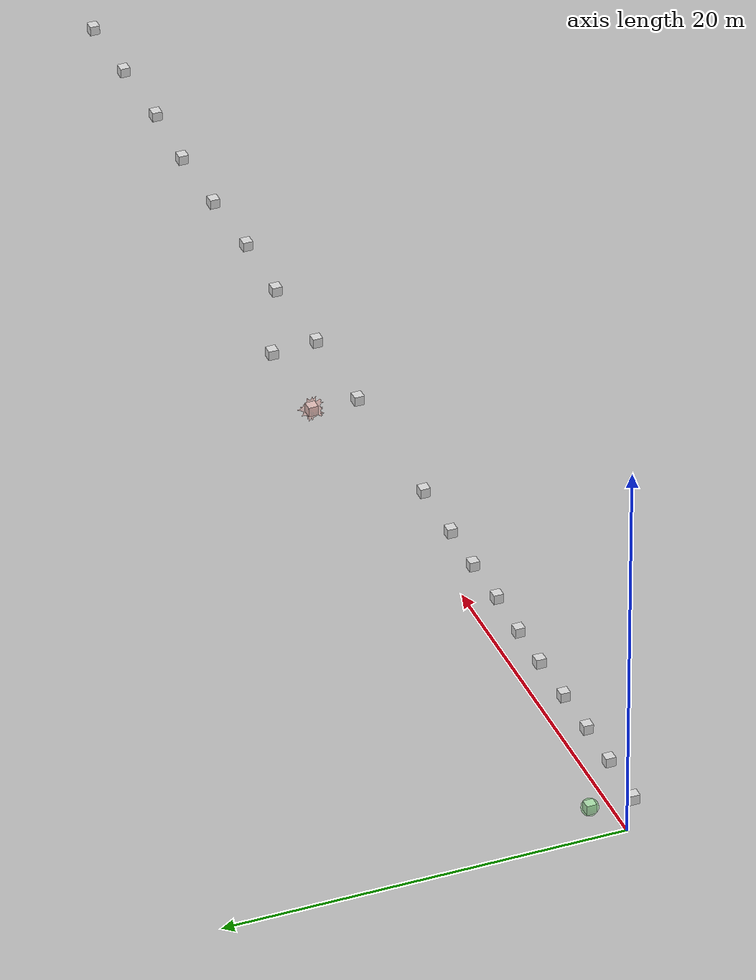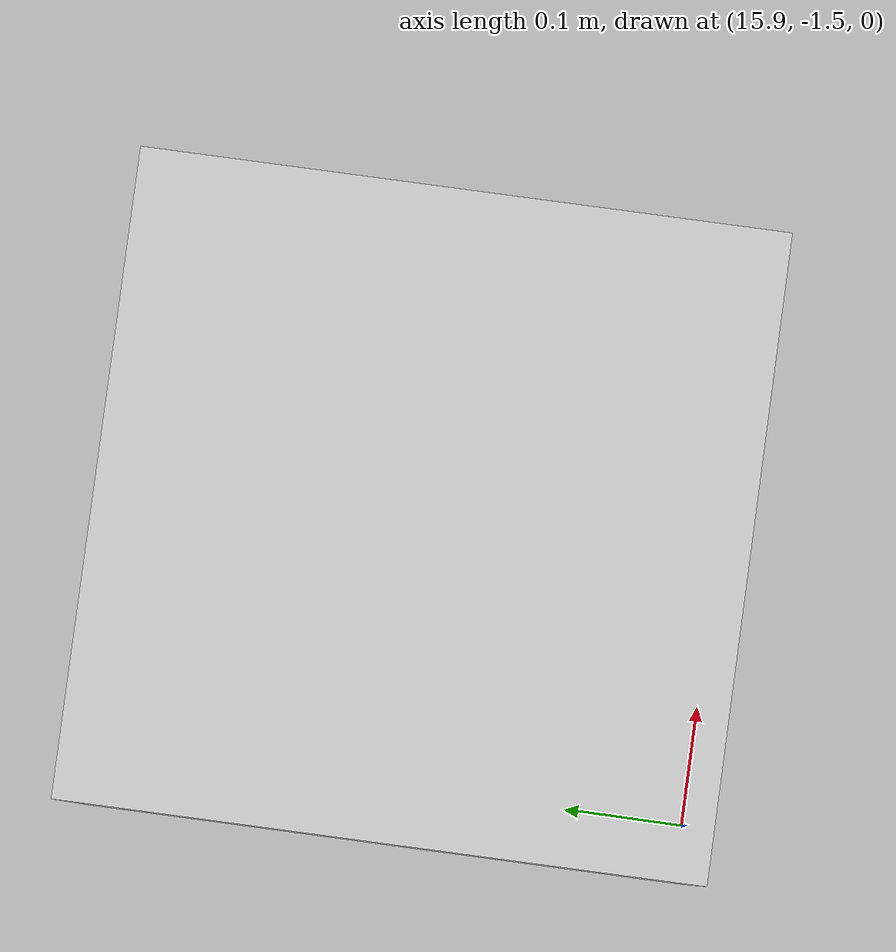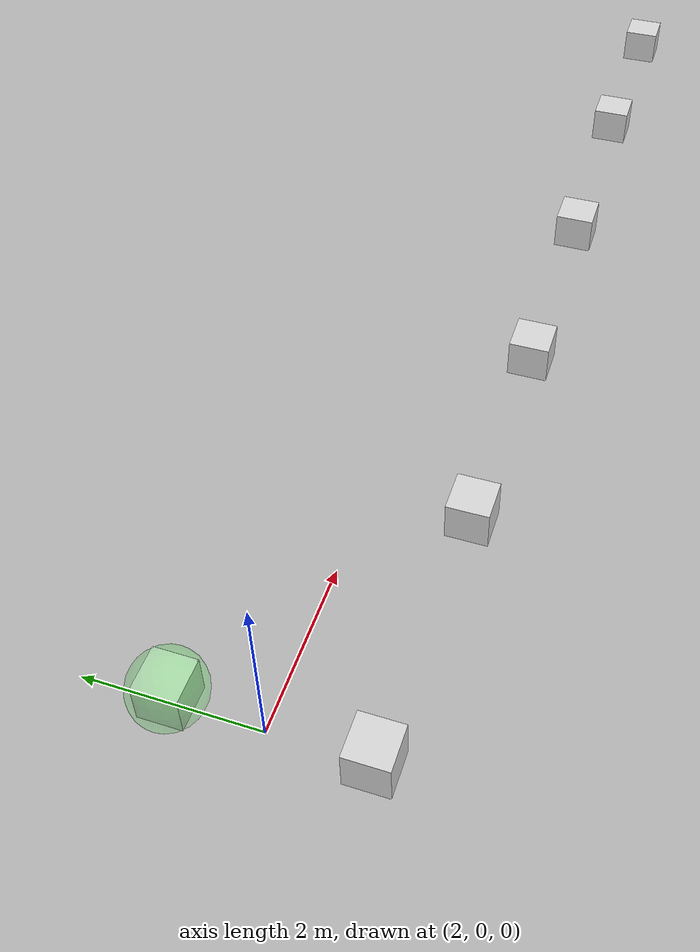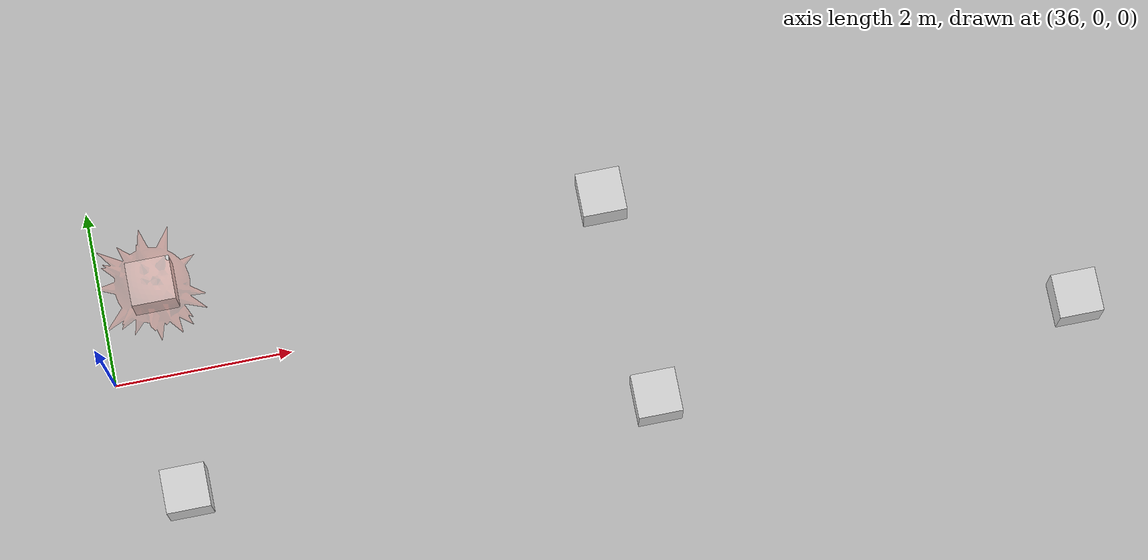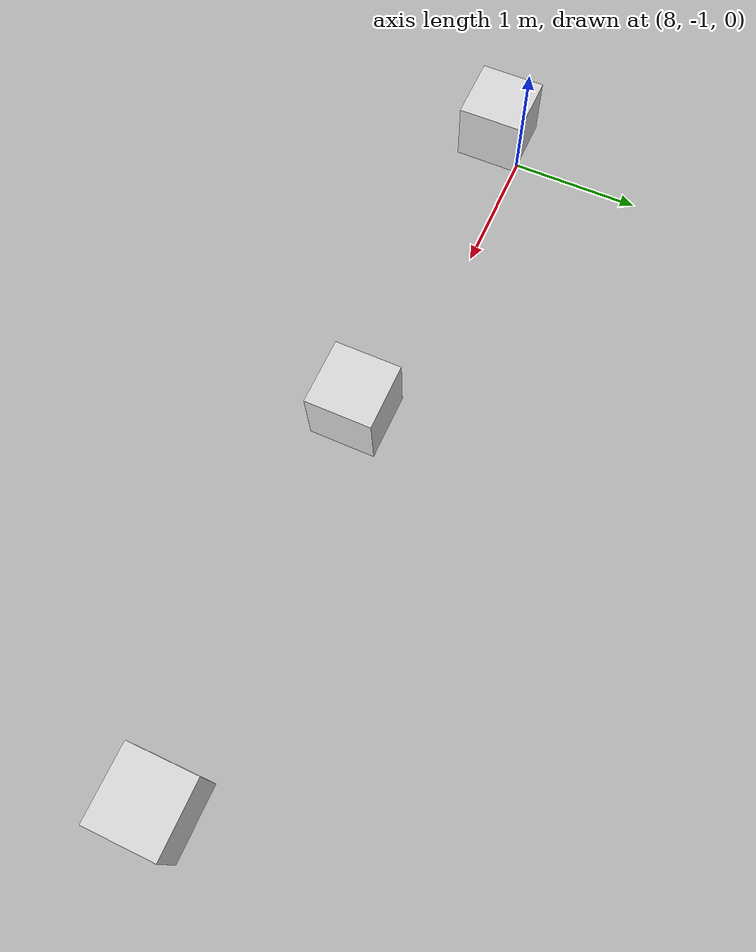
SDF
<sdf version="1.6">
 <world name="default">
  <light name="sun" type="directional">
   <pose>0 0 10 0 -0 0</pose>
   <diffuse>0.8 0.8 0.8 1</diffuse>
   <specular>0.2 0.2 0.2 1</specular>
   <attenuation>
    <range>1000</range>
    <constant>0.9</constant>
    <linear>0.01</linear>
    <quadratic>0.001</quadratic>
   </attenuation>
   <direction>-0.5 0.1 -0.9</direction>
  </light>
  <gravity>0 0 -9.8</gravity>
  <magnetic_field>6e-06 2.3e-05 -4.2e-05</magnetic_field>
  <atmosphere type="adiabatic"/>
  <physics name="default_physics" default="0" type="ode">
   <max_step_size>0.001</max_step_size>
   <real_time_factor>1</real_time_factor>
   <real_time_update_rate>1000</real_time_update_rate>
  </physics>
  <scene><ambient>0.4 0.4 0.4 1</ambient><background>0.9 0.9 0.9 1</background><shadows>1</shadows></scene>
  <spherical_coordinates>
   <surface_model>EARTH_WGS84</surface_model>
   <latitude_deg>0</latitude_deg>
   <longitude_deg>0</longitude_deg>
   <elevation>0</elevation>
   <heading_deg>0</heading_deg>
  </spherical_coordinates>
  <model name="vis_cue_attract">
   <static>0</static>
   <pose>2.02166 1.01859 0.249993 3e-06 -7e-06 0</pose>
   <link name="vis_cue_attract">
    <inertial>
     <mass>1</mass>
     <inertia>
      <ixx>0.166667</ixx>
      <ixy>0</ixy>
      <ixz>0</ixz>
      <iyy>0.166667</iyy>
      <iyz>0</iyz>
      <izz>0.166667</izz>
     </inertia>
    </inertial>
    <collision name="collision"><geometry><box><size>0.5 0.5 0.5</size></box></geometry></collision>
    <visual name="box_visual">
     <geometry><box><size>0.5 0.5 0.5</size></box></geometry>
     <material>
      <ambient>0.85 0.85 0.85 1</ambient>
      <diffuse>0.85 0.85 0.85 1</diffuse>
      <specular>0.15 0.15 0.15 1</specular>
      <emissive>0 0 0 0</emissive>
     </material>
    </visual>
    <visual name="cue_visual">
     <geometry>
      <mesh><uri>model://vis_cue_attract/meshes/sphere.stl</uri><scale>0.85 0.85 0.85</scale></mesh>
     </geometry>
     <material>
      <ambient>0 1 0 0.15</ambient>
      <diffuse>0 1 0 0.15</diffuse>
      <specular>0 1 0 0.15</specular>
      <emissive>0 0 0 0</emissive>
     </material>
    </visual>
   </link>
  </model>
  <model name="vis_cue_normal_0">
   <static>0</static>
   <pose>24.7354 -1.35599 0.249993 0 -6e-06 0</pose>
   <link name="vis_cue_normal">
    <inertial>
     <mass>1</mass>
     <inertia>
      <ixx>0.166667</ixx>
      <ixy>0</ixy>
      <ixz>0</ixz>
      <iyy>0.166667</iyy>
      <iyz>0</iyz>
      <izz>0.166667</izz>
     </inertia>
    </inertial>
    <collision name="collision"><geometry><box><size>0.5 0.5 0.5</size></box></geometry></collision>
    <visual name="box_visual">
     <geometry><box><size>0.5 0.5 0.5</size></box></geometry>
     <material>
      <ambient>0.85 0.85 0.85 1</ambient>
      <diffuse>0.85 0.85 0.85 1</diffuse>
      <specular>0.15 0.15 0.15 1</specular>
      <emissive>0 0 0 0</emissive>
     </material>
    </visual>
   </link>
  </model>
  <model name="vis_cue_normal_0_clone">
   <static>0</static>
   <pose>28.2752 -1.41342 0.249997 4e-06 7e-06 0</pose>
   <link name="vis_cue_normal">
    <inertial>
     <mass>1</mass>
     <inertia>
      <ixx>0.166667</ixx>
      <ixy>0</ixy>
      <ixz>0</ixz>
      <iyy>0.166667</iyy>
      <iyz>0</iyz>
      <izz>0.166667</izz>
     </inertia>
    </inertial>
    <collision name="collision"><geometry><box><size>0.5 0.5 0.5</size></box></geometry></collision>
    <visual name="box_visual">
     <geometry><box><size>0.5 0.5 0.5</size></box></geometry>
     <material>
      <ambient>0.85 0.85 0.85 1</ambient>
      <diffuse>0.85 0.85 0.85 1</diffuse>
      <specular>0.15 0.15 0.15 1</specular>
      <emissive>0 0 0 0</emissive>
     </material>
    </visual>
   </link>
  </model>
  <model name="vis_cue_normal_0_clone_0">
   <static>0</static>
   <pose>21.8362 -1.30356 0.249997 7e-06 7e-06 -0</pose>
   <link name="vis_cue_normal">
    <inertial>
     <mass>1</mass>
     <inertia>
      <ixx>0.166667</ixx>
      <ixy>0</ixy>
      <ixz>0</ixz>
      <iyy>0.166667</iyy>
      <iyz>0</iyz>
      <izz>0.166667</izz>
     </inertia>
    </inertial>
    <collision name="collision"><geometry><box><size>0.5 0.5 0.5</size></box></geometry></collision>
    <visual name="box_visual">
     <geometry><box><size>0.5 0.5 0.5</size></box></geometry>
     <material>
      <ambient>0.85 0.85 0.85 1</ambient>
      <diffuse>0.85 0.85 0.85 1</diffuse>
      <specular>0.15 0.15 0.15 1</specular>
      <emissive>0 0 0 0</emissive>
     </material>
    </visual>
   </link>
  </model>
  <model name="vis_cue_normal_0_clone_1">
   <static>0</static>
   <pose>18.978 -1.34768 0.249997 8e-06 -5e-06 0</pose>
   <link name="vis_cue_normal">
    <inertial>
     <mass>1</mass>
     <inertia>
      <ixx>0.166667</ixx>
      <ixy>0</ixy>
      <ixz>0</ixz>
      <iyy>0.166667</iyy>
      <iyz>0</iyz>
      <izz>0.166667</izz>
     </inertia>
    </inertial>
    <collision name="collision"><geometry><box><size>0.5 0.5 0.5</size></box></geometry></collision>
    <visual name="box_visual">
     <geometry><box><size>0.5 0.5 0.5</size></box></geometry>
     <material>
      <ambient>0.85 0.85 0.85 1</ambient>
      <diffuse>0.85 0.85 0.85 1</diffuse>
      <specular>0.15 0.15 0.15 1</specular>
      <emissive>0 0 0 0</emissive>
     </material>
    </visual>
   </link>
  </model>
  <model name="vis_cue_normal_0_clone_2">
   <static>0</static>
   <pose>16.1014 -1.25305 0.249992 -7e-06 2e-06 -0</pose>
   <link name="vis_cue_normal">
    <inertial>
     <mass>1</mass>
     <inertia>
      <ixx>0.166667</ixx>
      <ixy>0</ixy>
      <ixz>0</ixz>
      <iyy>0.166667</iyy>
      <iyz>0</iyz>
      <izz>0.166667</izz>
     </inertia>
    </inertial>
    <collision name="collision"><geometry><box><size>0.5 0.5 0.5</size></box></geometry></collision>
    <visual name="box_visual">
     <geometry><box><size>0.5 0.5 0.5</size></box></geometry>
     <material>
      <ambient>0.85 0.85 0.85 1</ambient>
      <diffuse>0.85 0.85 0.85 1</diffuse>
      <specular>0.15 0.15 0.15 1</specular>
      <emissive>0 0 0 0</emissive>
     </material>
    </visual>
   </link>
  </model>
  <model name="vis_cue_normal_0_clone_3">
   <static>0</static>
   <pose>13.4535 -1.22166 0.249993 5e-06 -5e-06 -0</pose>
   <link name="vis_cue_normal">
    <inertial>
     <mass>1</mass>
     <inertia>
      <ixx>0.166667</ixx>
      <ixy>0</ixy>
      <ixz>0</ixz>
      <iyy>0.166667</iyy>
      <iyz>0</iyz>
      <izz>0.166667</izz>
     </inertia>
    </inertial>
    <collision name="collision"><geometry><box><size>0.5 0.5 0.5</size></box></geometry></collision>
    <visual name="box_visual">
     <geometry><box><size>0.5 0.5 0.5</size></box></geometry>
     <material>
      <ambient>0.85 0.85 0.85 1</ambient>
      <diffuse>0.85 0.85 0.85 1</diffuse>
      <specular>0.15 0.15 0.15 1</specular>
      <emissive>0 0 0 0</emissive>
     </material>
    </visual>
   </link>
  </model>
  <model name="vis_cue_normal_0_clone_4">
   <static>0</static>
   <pose>10.5742 -1.24567 0.249992 0 -6e-06 0</pose>
   <link name="vis_cue_normal">
    <inertial>
     <mass>1</mass>
     <inertia>
      <ixx>0.166667</ixx>
      <ixy>0</ixy>
      <ixz>0</ixz>
      <iyy>0.166667</iyy>
      <iyz>0</iyz>
      <izz>0.166667</izz>
     </inertia>
    </inertial>
    <collision name="collision"><geometry><box><size>0.5 0.5 0.5</size></box></geometry></collision>
    <visual name="box_visual">
     <geometry><box><size>0.5 0.5 0.5</size></box></geometry>
     <material>
      <ambient>0.85 0.85 0.85 1</ambient>
      <diffuse>0.85 0.85 0.85 1</diffuse>
      <specular>0.15 0.15 0.15 1</specular>
      <emissive>0 0 0 0</emissive>
     </material>
    </visual>
   </link>
  </model>
  <model name="vis_cue_normal_0_clone_5">
   <static>0</static>
   <pose>7.81822 -1.24973 0.249998 5e-06 -4e-06 0</pose>
   <link name="vis_cue_normal">
    <inertial>
     <mass>1</mass>
     <inertia>
      <ixx>0.166667</ixx>
      <ixy>0</ixy>
      <ixz>0</ixz>
      <iyy>0.166667</iyy>
      <iyz>0</iyz>
      <izz>0.166667</izz>
     </inertia>
    </inertial>
    <collision name="collision"><geometry><box><size>0.5 0.5 0.5</size></box></geometry></collision>
    <visual name="box_visual">
     <geometry><box><size>0.5 0.5 0.5</size></box></geometry>
     <material>
      <ambient>0.85 0.85 0.85 1</ambient>
      <diffuse>0.85 0.85 0.85 1</diffuse>
      <specular>0.15 0.15 0.15 1</specular>
      <emissive>0 0 0 0</emissive>
     </material>
    </visual>
   </link>
  </model>
  <model name="vis_cue_normal_0_clone_6">
   <static>0</static>
   <pose>5.07781 -1.22058 0.249995 0 3e-06 0</pose>
   <link name="vis_cue_normal">
    <inertial>
     <mass>1</mass>
     <inertia>
      <ixx>0.166667</ixx>
      <ixy>0</ixy>
      <ixz>0</ixz>
      <iyy>0.166667</iyy>
      <iyz>0</iyz>
      <izz>0.166667</izz>
     </inertia>
    </inertial>
    <collision name="collision"><geometry><box><size>0.5 0.5 0.5</size></box></geometry></collision>
    <visual name="box_visual">
     <geometry><box><size>0.5 0.5 0.5</size></box></geometry>
     <material>
      <ambient>0.85 0.85 0.85 1</ambient>
      <diffuse>0.85 0.85 0.85 1</diffuse>
      <specular>0.15 0.15 0.15 1</specular>
      <emissive>0 0 0 0</emissive>
     </material>
    </visual>
   </link>
  </model>
  <model name="vis_cue_normal_0_clone_7">
   <static>0</static>
   <pose>1.97998 -1.12488 0.249993 6e-06 -0 0</pose>
   <link name="vis_cue_normal">
    <inertial>
     <mass>1</mass>
     <inertia>
      <ixx>0.166667</ixx>
      <ixy>0</ixy>
      <ixz>0</ixz>
      <iyy>0.166667</iyy>
      <iyz>0</iyz>
      <izz>0.166667</izz>
     </inertia>
    </inertial>
    <collision name="collision"><geometry><box><size>0.5 0.5 0.5</size></box></geometry></collision>
    <visual name="box_visual">
     <geometry><box><size>0.5 0.5 0.5</size></box></geometry>
     <material>
      <ambient>0.85 0.85 0.85 1</ambient>
      <diffuse>0.85 0.85 0.85 1</diffuse>
      <specular>0.15 0.15 0.15 1</specular>
      <emissive>0 0 0 0</emissive>
     </material>
    </visual>
   </link>
  </model>
  <model name="vis_cue_repel">
   <static>0</static>
   <pose>36.6099 1.00272 0.249994 7e-06 -7e-06 0</pose>
   <link name="vis_cue_repel">
    <inertial>
     <mass>1</mass>
     <inertia>
      <ixx>0.166667</ixx>
      <ixy>0</ixy>
      <ixz>0</ixz>
      <iyy>0.166667</iyy>
      <iyz>0</iyz>
      <izz>0.166667</izz>
     </inertia>
    </inertial>
    <collision name="collision"><geometry><box><size>0.5 0.5 0.5</size></box></geometry></collision>
    <visual name="box_visual">
     <geometry><box><size>0.5 0.5 0.5</size></box></geometry>
     <material>
      <ambient>0.85 0.85 0.85 1</ambient>
      <diffuse>0.85 0.85 0.85 1</diffuse>
      <specular>0.15 0.15 0.15 1</specular>
      <emissive>0 0 0 0</emissive>
     </material>
    </visual>
    <visual name="cue_visual">
     <geometry><mesh><uri>model://repelling_cue_2.dae</uri><scale>0.85 0.85 0.85</scale></mesh></geometry>
     <material>
      <ambient>1 0.3 0.2 0.2</ambient>
      <diffuse>1 0.3 0.2 0.2</diffuse>
      <specular>1 0.3 0.2 0.5</specular>
      <emissive>0.5 0 0 0.1</emissive>
     </material>
    </visual>
   </link>
  </model>
  <model name="vis_cue_repel_2">
   <static>0</static>
   <pose>41.7426 1.02487 0.249996 -7e-06 7e-06 0</pose>
   <link name="vis_cue_repel_2">
    <inertial>
     <mass>1</mass>
     <inertia>
      <ixx>0.166667</ixx>
      <ixy>0</ixy>
      <ixz>0</ixz>
      <iyy>0.166667</iyy>
      <iyz>0</iyz>
      <izz>0.166667</izz>
     </inertia>
    </inertial>
    <collision name="collision"><geometry><box><size>0.5 0.5 0.5</size></box></geometry></collision>
    <visual name="box_visual">
     <geometry><box><size>0.5 0.5 0.5</size></box></geometry>
     <material>
      <ambient>0.85 0.85 0.85 1</ambient>
      <diffuse>0.85 0.85 0.85 1</diffuse>
      <specular>0.15 0.15 0.15 1</specular>
      <emissive>0 0 0 0</emissive>
     </material>
    </visual>
    <visual name="cue_visual">
     <geometry>
      <mesh><uri>model://vis_cue_repel_2/meshes/repelling_cue_2.stl</uri><scale>0.25 0.25 0.25</scale></mesh>
     </geometry>
     <material>
      <ambient>1 0.3 0.2 0.6</ambient>
      <diffuse>1 0.3 0.2 0.6</diffuse>
      <specular>1 0.3 0.2 0.7</specular>
      <emissive>0.5 0 0 0.1</emissive>
     </material>
    </visual>
   </link>
  </model>
  <model name="vis_cue_normal_0_clone_clone">
   <static>0</static>
   <pose>36.5868 -1.37549 0.249996 -7e-06 7e-06 0</pose>
   <link name="vis_cue_normal">
    <inertial>
     <mass>1</mass>
     <inertia>
      <ixx>0.166667</ixx>
      <ixy>0</ixy>
      <ixz>0</ixz>
      <iyy>0.166667</iyy>
      <iyz>0</iyz>
      <izz>0.166667</izz>
     </inertia>
    </inertial>
    <collision name="collision"><geometry><box><size>0.5 0.5 0.5</size></box></geometry></collision>
    <visual name="box_visual">
     <geometry><box><size>0.5 0.5 0.5</size></box></geometry>
     <material>
      <ambient>0.85 0.85 0.85 1</ambient>
      <diffuse>0.85 0.85 0.85 1</diffuse>
      <specular>0.15 0.15 0.15 1</specular>
      <emissive>0 0 0 0</emissive>
     </material>
    </visual>
   </link>
  </model>
  <model name="vis_cue_normal_0_clone_clone_0">
   <static>0</static>
   <pose>41.9001 -1.34361 0.249994 7e-06 -7e-06 0</pose>
   <link name="vis_cue_normal">
    <inertial>
     <mass>1</mass>
     <inertia>
      <ixx>0.166667</ixx>
      <ixy>0</ixy>
      <ixz>0</ixz>
      <iyy>0.166667</iyy>
      <iyz>0</iyz>
      <izz>0.166667</izz>
     </inertia>
    </inertial>
    <collision name="collision"><geometry><box><size>0.5 0.5 0.5</size></box></geometry></collision>
    <visual name="box_visual">
     <geometry><box><size>0.5 0.5 0.5</size></box></geometry>
     <material>
      <ambient>0.85 0.85 0.85 1</ambient>
      <diffuse>0.85 0.85 0.85 1</diffuse>
      <specular>0.15 0.15 0.15 1</specular>
      <emissive>0 0 0 0</emissive>
     </material>
    </visual>
   </link>
  </model>
  <model name="vis_cue_normal_0_clone_clone_1">
   <static>0</static>
   <pose>46.7245 -1.14311 0.249994 7e-06 -7e-06 0</pose>
   <link name="vis_cue_normal">
    <inertial>
     <mass>1</mass>
     <inertia>
      <ixx>0.166667</ixx>
      <ixy>0</ixy>
      <ixz>0</ixz>
      <iyy>0.166667</iyy>
      <iyz>0</iyz>
      <izz>0.166667</izz>
     </inertia>
    </inertial>
    <collision name="collision"><geometry><box><size>0.5 0.5 0.5</size></box></geometry></collision>
    <visual name="box_visual">
     <geometry><box><size>0.5 0.5 0.5</size></box></geometry>
     <material>
      <ambient>0.85 0.85 0.85 1</ambient>
      <diffuse>0.85 0.85 0.85 1</diffuse>
      <specular>0.15 0.15 0.15 1</specular>
      <emissive>0 0 0 0</emissive>
     </material>
    </visual>
   </link>
  </model>
  <model name="vis_cue_normal_0_clone_clone_2">
   <static>0</static>
   <pose>50.9285 -1.26384 0.249994 7e-06 -7e-06 0</pose>
   <link name="vis_cue_normal">
    <inertial>
     <mass>1</mass>
     <inertia>
      <ixx>0.166667</ixx>
      <ixy>0</ixy>
      <ixz>0</ixz>
      <iyy>0.166667</iyy>
      <iyz>0</iyz>
      <izz>0.166667</izz>
     </inertia>
    </inertial>
    <collision name="collision"><geometry><box><size>0.5 0.5 0.5</size></box></geometry></collision>
    <visual name="box_visual">
     <geometry><box><size>0.5 0.5 0.5</size></box></geometry>
     <material>
      <ambient>0.85 0.85 0.85 1</ambient>
      <diffuse>0.85 0.85 0.85 1</diffuse>
      <specular>0.15 0.15 0.15 1</specular>
      <emissive>0 0 0 0</emissive>
     </material>
    </visual>
   </link>
  </model>
  <model name="vis_cue_normal_0_clone_clone_3">
   <static>0</static>
   <pose>55.0035 -1.12272 0.249996 -7e-06 7e-06 0</pose>
   <link name="vis_cue_normal">
    <inertial>
     <mass>1</mass>
     <inertia>
      <ixx>0.166667</ixx>
      <ixy>0</ixy>
      <ixz>0</ixz>
      <iyy>0.166667</iyy>
      <iyz>0</iyz>
      <izz>0.166667</izz>
     </inertia>
    </inertial>
    <collision name="collision"><geometry><box><size>0.5 0.5 0.5</size></box></geometry></collision>
    <visual name="box_visual">
     <geometry><box><size>0.5 0.5 0.5</size></box></geometry>
     <material>
      <ambient>0.85 0.85 0.85 1</ambient>
      <diffuse>0.85 0.85 0.85 1</diffuse>
      <specular>0.15 0.15 0.15 1</specular>
      <emissive>0 0 0 0</emissive>
     </material>
    </visual>
   </link>
  </model>
  <model name="vis_cue_normal_0_clone_clone_4">
   <static>0</static>
   <pose>59.1978 -1.10907 0.249994 7e-06 -7e-06 0</pose>
   <link name="vis_cue_normal">
    <inertial>
     <mass>1</mass>
     <inertia>
      <ixx>0.166667</ixx>
      <ixy>0</ixy>
      <ixz>0</ixz>
      <iyy>0.166667</iyy>
      <iyz>0</iyz>
      <izz>0.166667</izz>
     </inertia>
    </inertial>
    <collision name="collision"><geometry><box><size>0.5 0.5 0.5</size></box></geometry></collision>
    <visual name="box_visual">
     <geometry><box><size>0.5 0.5 0.5</size></box></geometry>
     <material>
      <ambient>0.85 0.85 0.85 1</ambient>
      <diffuse>0.85 0.85 0.85 1</diffuse>
      <specular>0.15 0.15 0.15 1</specular>
      <emissive>0 0 0 0</emissive>
     </material>
    </visual>
   </link>
  </model>
  <model name="vis_cue_normal_0_clone_clone_5">
   <static>0</static>
   <pose>63.3125 -1.30661 0.249994 7e-06 -7e-06 0</pose>
   <link name="vis_cue_normal">
    <inertial>
     <mass>1</mass>
     <inertia>
      <ixx>0.166667</ixx>
      <ixy>0</ixy>
      <ixz>0</ixz>
      <iyy>0.166667</iyy>
      <iyz>0</iyz>
      <izz>0.166667</izz>
     </inertia>
    </inertial>
    <collision name="collision"><geometry><box><size>0.5 0.5 0.5</size></box></geometry></collision>
    <visual name="box_visual">
     <geometry><box><size>0.5 0.5 0.5</size></box></geometry>
     <material>
      <ambient>0.85 0.85 0.85 1</ambient>
      <diffuse>0.85 0.85 0.85 1</diffuse>
      <specular>0.15 0.15 0.15 1</specular>
      <emissive>0 0 0 0</emissive>
     </material>
    </visual>
   </link>
  </model>
  <model name="vis_cue_normal_0_clone_clone_6">
   <static>0</static>
   <pose>67.6229 -1.25616 0.249996 -7e-06 7e-06 0</pose>
   <link name="vis_cue_normal">
    <inertial>
     <mass>1</mass>
     <inertia>
      <ixx>0.166667</ixx>
      <ixy>0</ixy>
      <ixz>0</ixz>
      <iyy>0.166667</iyy>
      <iyz>0</iyz>
      <izz>0.166667</izz>
     </inertia>
    </inertial>
    <collision name="collision"><geometry><box><size>0.5 0.5 0.5</size></box></geometry></collision>
    <visual name="box_visual">
     <geometry><box><size>0.5 0.5 0.5</size></box></geometry>
     <material>
      <ambient>0.85 0.85 0.85 1</ambient>
      <diffuse>0.85 0.85 0.85 1</diffuse>
      <specular>0.15 0.15 0.15 1</specular>
      <emissive>0 0 0 0</emissive>
     </material>
    </visual>
   </link>
  </model>
  <model name="vis_cue_normal_0_clone_clone_6_clone">
   <static>0</static>
   <pose>71.7735 -1.2251 0.249997 6e-06 -0 0</pose>
   <link name="vis_cue_normal">
    <inertial>
     <mass>1</mass>
     <inertia>
      <ixx>0.166667</ixx>
      <ixy>0</ixy>
      <ixz>0</ixz>
      <iyy>0.166667</iyy>
      <iyz>0</iyz>
      <izz>0.166667</izz>
     </inertia>
    </inertial>
    <collision name="collision"><geometry><box><size>0.5 0.5 0.5</size></box></geometry></collision>
    <visual name="box_visual">
     <geometry><box><size>0.5 0.5 0.5</size></box></geometry>
     <material>
      <ambient>0.85 0.85 0.85 1</ambient>
      <diffuse>0.85 0.85 0.85 1</diffuse>
      <specular>0.15 0.15 0.15 1</specular>
      <emissive>0 0 0 0</emissive>
     </material>
    </visual>
   </link>
  </model>
 </world>
</sdf>
